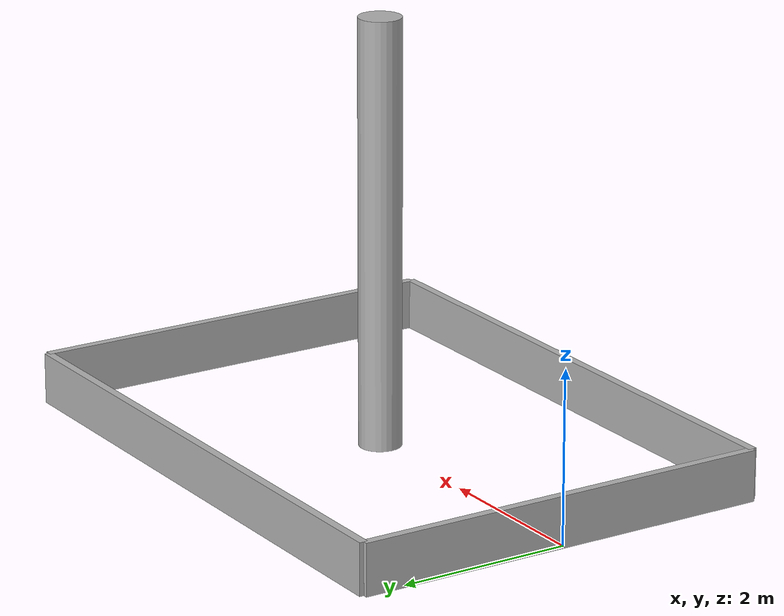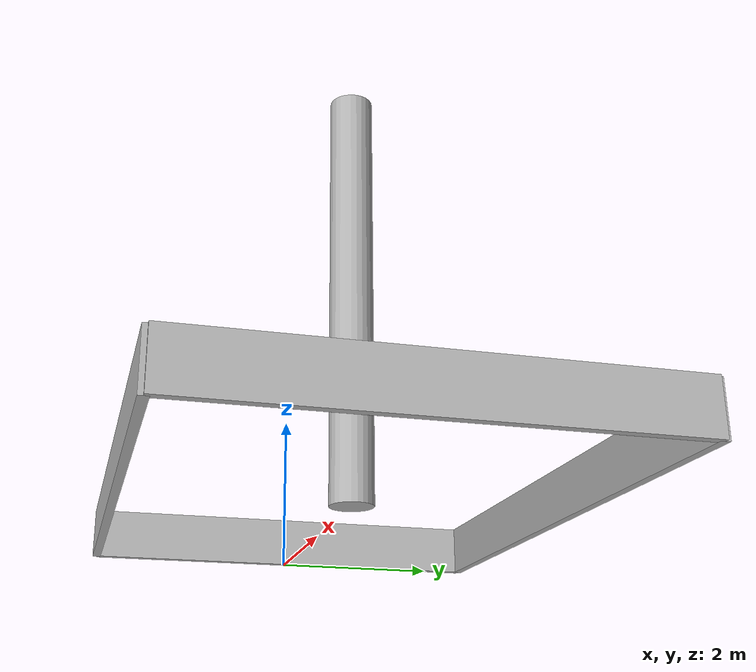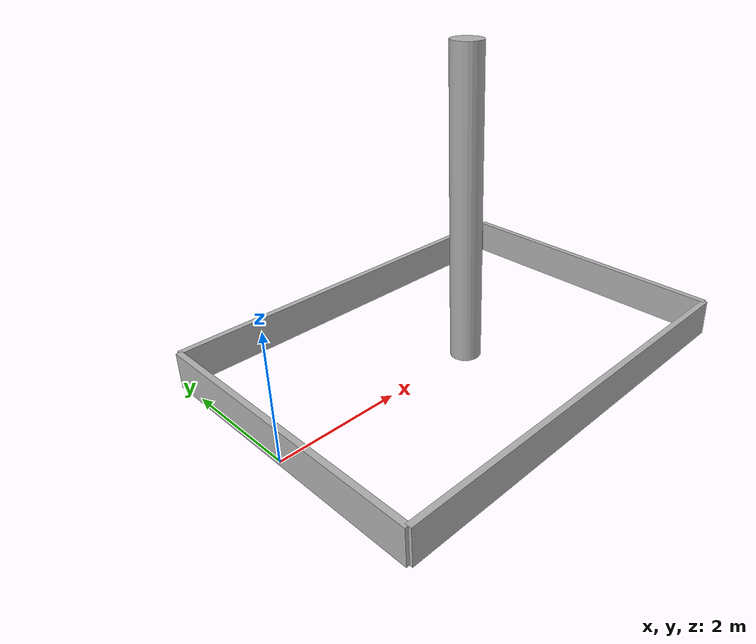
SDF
<?xml version="1.0" ?>
<sdf version='1.7'>
  <model name='arena_frame_nasa'>
    <pose>0 0 0 0 0 0</pose>
    <static>true</static>

    <!-- Left Wall -->
    <link name='left_wall'>
      <pose>0 0 0.3 0 0 0</pose>
      <collision name='collision'>
        <geometry>
          <box>
            <size>0.1 5.0 0.6</size>
          </box>
        </geometry>
      </collision>
      <visual name='visual'>
        <geometry>
          <box>
            <size>0.1 5.0 0.6</size>
          </box>
        </geometry>
        <material>
          <ambient>0.7 0.7 0.7 1</ambient>
          <diffuse>0.7 0.7 0.7 1</diffuse>
        </material>
      </visual>
    </link>

    <!-- Right Wall -->
    <link name='right_wall'>
      <pose>6.88 0 0.3 0 0 0</pose>
      <collision name='collision'>
        <geometry>
          <box>
            <size>0.1 5.0 0.6</size>
          </box>
        </geometry>
      </collision>
      <visual name='visual'>
        <geometry>
          <box>
            <size>0.1 5.0 0.6</size>
          </box>
        </geometry>
        <material>
          <ambient>0.7 0.7 0.7 1</ambient>
          <diffuse>0.7 0.7 0.7 1</diffuse>
        </material>
      </visual>
    </link>

    <!-- Top Wall -->
    <link name='top_wall'>
      <pose>3.44 2.5 0.3 0 0 0</pose>
      <collision name='collision'>
        <geometry>
          <box>
            <size>6.88 0.1 0.6</size>
          </box>
        </geometry>
      </collision>
      <visual name='visual'>
        <geometry>
          <box>
            <size>6.88 0.1 0.6</size>
          </box>
        </geometry>
        <material>
          <ambient>0.7 0.7 0.7 1</ambient>
          <diffuse>0.7 0.7 0.7 1</diffuse>
        </material>
      </visual>
    </link>

    <!-- Bottom Wall -->
    <link name='bottom_wall'>
      <pose>3.44 -2.5 0.3 0 0 0</pose>
      <collision name='collision'>
        <geometry>
          <box>
            <size>6.88 0.1 0.6</size>
          </box>
        </geometry>
      </collision>
      <visual name='visual'>
        <geometry>
          <box>
            <size>6.88 0.1 0.6</size>
          </box>
        </geometry>
        <material>
          <ambient>0.7 0.7 0.7 1</ambient>
          <diffuse>0.7 0.7 0.7 1</diffuse>
        </material>
      </visual>
    </link>

    <!-- Center Pole -->
    <link name='center_pole'>
      <pose>3.63 0 2.5 0 0 0</pose>
      <collision name='collision'>
        <geometry>
          <cylinder>
            <radius>0.25</radius>
            <length>5.0</length>
          </cylinder>
        </geometry>
      </collision>
      <visual name='visual'>
        <geometry>
          <cylinder>
            <radius>0.25</radius>
            <length>5.0</length>
          </cylinder>
        </geometry>
        <material>
          <ambient>0.7 0.7 0.7 1</ambient>
          <diffuse>0.7 0.7 0.7 1</diffuse>
        </material>
      </visual>
    </link>
  </model>
</sdf>
